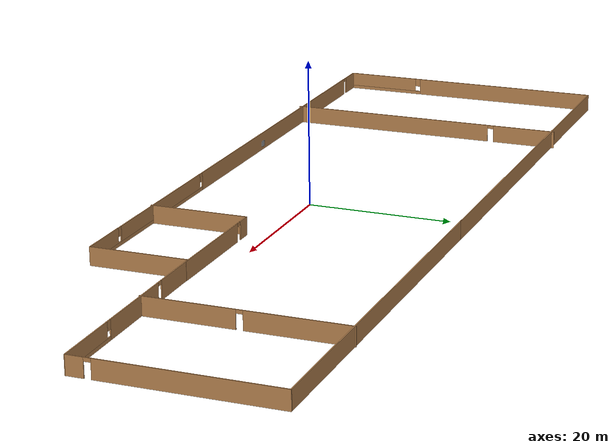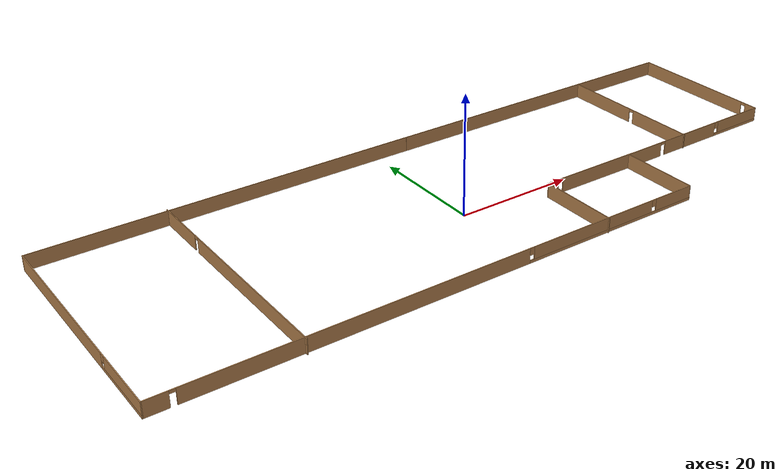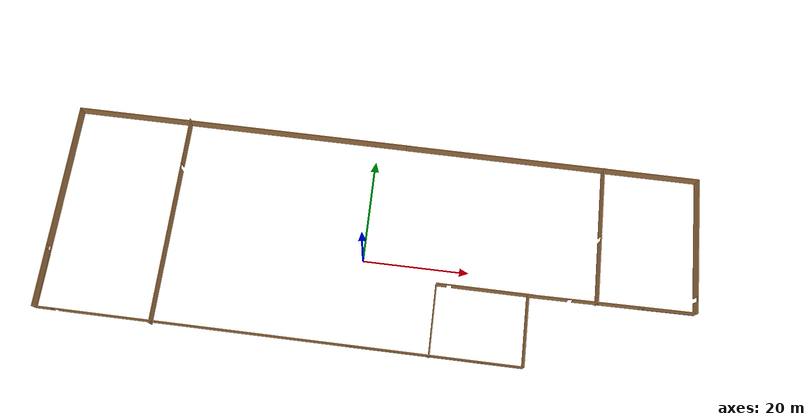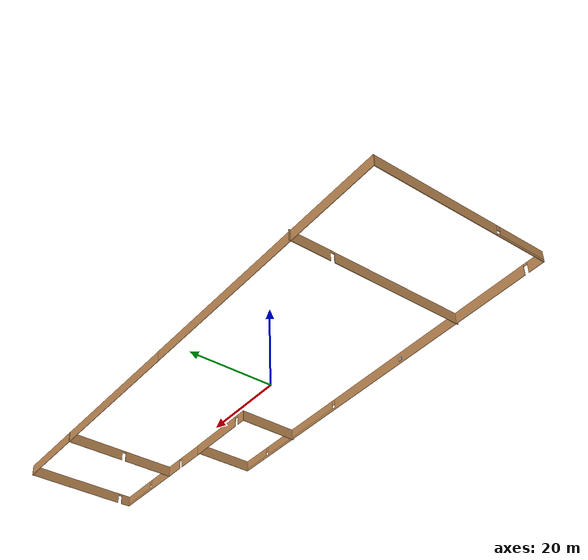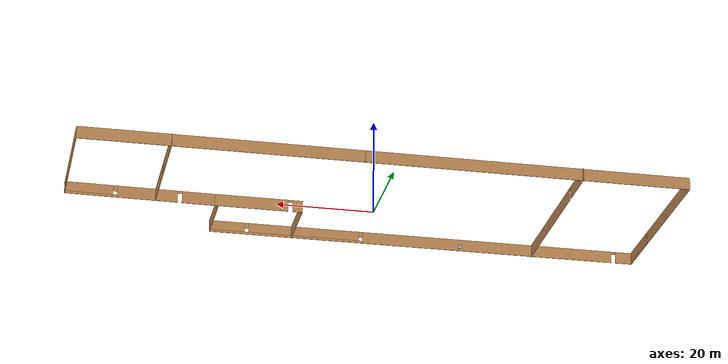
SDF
<?xml version='1.0'?>
<sdf version='1.6'>
  <model name='newworld'>
    <pose frame=''>1.44119 3.47253 0 0 -0 0</pose>
    <link name='Wall_1'>
      <collision name='Wall_1_Collision'>
        <geometry>
          <box>
            <size>65.75 0.15 2.5</size>
          </box>
        </geometry>
        <pose frame=''>0 0 1.25 0 -0 0</pose>
      </collision>
      <visual name='Wall_1_Visual'>
        <pose frame=''>0 0 1.25 0 -0 0</pose>
        <geometry>
          <box>
            <size>65.75 0.15 2.5</size>
          </box>
        </geometry>
        <material>
          <script>
            <uri>file://media/materials/scripts/gazebo.material</uri>
            <name>Gazebo/Wood</name>
          </script>
          <ambient>1 1 1 1</ambient>
        </material>
        <meta>
          <layer>0</layer>
        </meta>
      </visual>
      <pose frame=''>-27.9742 19.9319 0 0 -0 3.14159</pose>
    </link>
    <link name='Wall_10'>
      <collision name='Wall_10_Collision'>
        <geometry>
          <box>
            <size>56.75 0.15 2.5</size>
          </box>
        </geometry>
        <pose frame=''>0 0 1.25 0 -0 0</pose>
      </collision>
      <visual name='Wall_10_Visual'>
        <pose frame=''>0 0 1.25 0 -0 0</pose>
        <geometry>
          <box>
            <size>56.75 0.15 2.5</size>
          </box>
        </geometry>
        <material>
          <script>
            <uri>file://media/materials/scripts/gazebo.material</uri>
            <name>Gazebo/Wood</name>
          </script>
          <ambient>1 1 1 1</ambient>
        </material>
        <meta>
          <layer>0</layer>
        </meta>
      </visual>
      <pose frame=''>32.4733 19.9086 0 0 -0 0</pose>
    </link>
    <link name='Wall_11'>
      <pose frame=''>60.7733 6.85863 0 0 0 -1.5708</pose>
      <visual name='Wall_11_Visual_0'>
        <pose frame=''>-1.6007 0 1.25 0 -0 0</pose>
        <geometry>
          <box>
            <size>23.0486 0.15 2.5</size>
          </box>
        </geometry>
        <material>
          <script>
            <uri>file://media/materials/scripts/gazebo.material</uri>
            <name>Gazebo/Wood</name>
          </script>
          <ambient>1 1 1 1</ambient>
        </material>
        <meta>
          <layer>0</layer>
        </meta>
      </visual>
      <collision name='Wall_11_Collision_0'>
        <geometry>
          <box>
            <size>23.0486 0.15 2.5</size>
          </box>
        </geometry>
        <pose frame=''>-1.6007 0 1.25 0 -0 0</pose>
      </collision>
      <visual name='Wall_11_Visual_1'>
        <pose frame=''>11.9743 0 1.25 0 -0 0</pose>
        <geometry>
          <box>
            <size>2.30139 0.15 2.5</size>
          </box>
        </geometry>
        <material>
          <script>
            <uri>file://media/materials/scripts/gazebo.material</uri>
            <name>Gazebo/Wood</name>
          </script>
          <ambient>1 1 1 1</ambient>
        </material>
        <meta>
          <layer>0</layer>
        </meta>
      </visual>
      <collision name='Wall_11_Collision_1'>
        <geometry>
          <box>
            <size>2.30139 0.15 2.5</size>
          </box>
        </geometry>
        <pose frame=''>11.9743 0 1.25 0 -0 0</pose>
      </collision>
      <visual name='Wall_11_Visual_2'>
        <pose frame=''>10.3736 0 2.25 0 -0 0</pose>
        <geometry>
          <box>
            <size>0.9 0.15 0.5</size>
          </box>
        </geometry>
        <material>
          <script>
            <uri>file://media/materials/scripts/gazebo.material</uri>
            <name>Gazebo/Wood</name>
          </script>
          <ambient>1 1 1 1</ambient>
        </material>
        <meta>
          <layer>0</layer>
        </meta>
      </visual>
      <collision name='Wall_11_Collision_2'>
        <geometry>
          <box>
            <size>0.9 0.15 0.5</size>
          </box>
        </geometry>
        <pose frame=''>10.3736 0 2.25 0 -0 0</pose>
      </collision>
    </link>
    <link name='Wall_13'>
      <pose frame=''>45.2995 -6.37974 0 0 -0 0.012173</pose>
      <visual name='Wall_13_Visual_0'>
        <pose frame=''>-11.7999 0 1.25 0 -0 0</pose>
        <geometry>
          <box>
            <size>7.49983 0.15 2.5</size>
          </box>
        </geometry>
        <material>
          <script>
            <uri>file://media/materials/scripts/gazebo.material</uri>
            <name>Gazebo/Wood</name>
          </script>
          <ambient>1 1 1 1</ambient>
        </material>
        <meta>
          <layer>0</layer>
        </meta>
      </visual>
      <collision name='Wall_13_Collision_0'>
        <geometry>
          <box>
            <size>7.49983 0.15 2.5</size>
          </box>
        </geometry>
        <pose frame=''>-11.7999 0 1.25 0 -0 0</pose>
      </collision>
      <visual name='Wall_13_Visual_1'>
        <pose frame=''>-1.06438 0 1.25 0 -0 0</pose>
        <geometry>
          <box>
            <size>12.1713 0.15 2.5</size>
          </box>
        </geometry>
        <material>
          <script>
            <uri>file://media/materials/scripts/gazebo.material</uri>
            <name>Gazebo/Wood</name>
          </script>
          <ambient>1 1 1 1</ambient>
        </material>
        <meta>
          <layer>0</layer>
        </meta>
      </visual>
      <collision name='Wall_13_Collision_1'>
        <geometry>
          <box>
            <size>12.1713 0.15 2.5</size>
          </box>
        </geometry>
        <pose frame=''>-1.06438 0 1.25 0 -0 0</pose>
      </collision>
      <visual name='Wall_13_Visual_2'>
        <pose frame=''>10.2856 0 0.25 0 -0 0</pose>
        <geometry>
          <box>
            <size>10.5286 0.15 0.5</size>
          </box>
        </geometry>
        <material>
          <script>
            <uri>file://media/materials/scripts/gazebo.material</uri>
            <name>Gazebo/Wood</name>
          </script>
          <ambient>1 1 1 1</ambient>
        </material>
        <meta>
          <layer>0</layer>
        </meta>
      </visual>
      <collision name='Wall_13_Collision_2'>
        <geometry>
          <box>
            <size>10.5286 0.15 0.5</size>
          </box>
        </geometry>
        <pose frame=''>10.2856 0 0.25 0 -0 0</pose>
      </collision>
      <visual name='Wall_13_Visual_3'>
        <pose frame=''>10.6856 0 1.5 0 -0 0</pose>
        <geometry>
          <box>
            <size>9.72858 0.15 2</size>
          </box>
        </geometry>
        <material>
          <script>
            <uri>file://media/materials/scripts/gazebo.material</uri>
            <name>Gazebo/Wood</name>
          </script>
          <ambient>1 1 1 1</ambient>
        </material>
        <meta>
          <layer>0</layer>
        </meta>
      </visual>
      <collision name='Wall_13_Collision_3'>
        <geometry>
          <box>
            <size>9.72858 0.15 2</size>
          </box>
        </geometry>
        <pose frame=''>10.6856 0 1.5 0 -0 0</pose>
      </collision>
      <visual name='Wall_13_Visual_4'>
        <pose frame=''>5.42127 0 1.9 0 -0 0</pose>
        <geometry>
          <box>
            <size>0.8 0.15 1.2</size>
          </box>
        </geometry>
        <material>
          <script>
            <uri>file://media/materials/scripts/gazebo.material</uri>
            <name>Gazebo/Wood</name>
          </script>
          <ambient>1 1 1 1</ambient>
        </material>
        <meta>
          <layer>0</layer>
        </meta>
      </visual>
      <collision name='Wall_13_Collision_4'>
        <geometry>
          <box>
            <size>0.8 0.15 1.2</size>
          </box>
        </geometry>
        <pose frame=''>5.42127 0 1.9 0 -0 0</pose>
      </collision>
      <visual name='Wall_13_Visual_5'>
        <pose frame=''>-7.60002 0 2.25 0 -0 0</pose>
        <geometry>
          <box>
            <size>0.9 0.15 0.5</size>
          </box>
        </geometry>
        <material>
          <script>
            <uri>file://media/materials/scripts/gazebo.material</uri>
            <name>Gazebo/Wood</name>
          </script>
          <ambient>1 1 1 1</ambient>
        </material>
        <meta>
          <layer>0</layer>
        </meta>
      </visual>
      <collision name='Wall_13_Collision_5'>
        <geometry>
          <box>
            <size>0.9 0.15 0.5</size>
          </box>
        </geometry>
        <pose frame=''>-7.60002 0 2.25 0 -0 0</pose>
      </collision>
    </link>
    <link name='Wall_15'>
      <pose frame=''>21.617 -6.513 0 0 -0 3.14159</pose>
      <visual name='Wall_15_Visual_0'>
        <pose frame=''>-1.49387 0 1.25 0 -0 0</pose>
        <geometry>
          <box>
            <size>15.0123 0.15 2.5</size>
          </box>
        </geometry>
        <material>
          <script>
            <uri>file://media/materials/scripts/gazebo.material</uri>
            <name>Gazebo/Wood</name>
          </script>
          <ambient>1 1 1 1</ambient>
        </material>
        <meta>
          <layer>0</layer>
        </meta>
      </visual>
      <collision name='Wall_15_Collision_0'>
        <geometry>
          <box>
            <size>15.0123 0.15 2.5</size>
          </box>
        </geometry>
        <pose frame=''>-1.49387 0 1.25 0 -0 0</pose>
      </collision>
      <visual name='Wall_15_Visual_1'>
        <pose frame=''>7.95613 0 1.25 0 -0 0</pose>
        <geometry>
          <box>
            <size>2.08774 0.15 2.5</size>
          </box>
        </geometry>
        <material>
          <script>
            <uri>file://media/materials/scripts/gazebo.material</uri>
            <name>Gazebo/Wood</name>
          </script>
          <ambient>1 1 1 1</ambient>
        </material>
        <meta>
          <layer>0</layer>
        </meta>
      </visual>
      <collision name='Wall_15_Collision_1'>
        <geometry>
          <box>
            <size>2.08774 0.15 2.5</size>
          </box>
        </geometry>
        <pose frame=''>7.95613 0 1.25 0 -0 0</pose>
      </collision>
      <visual name='Wall_15_Visual_2'>
        <pose frame=''>6.46226 0 2.25 0 -0 0</pose>
        <geometry>
          <box>
            <size>0.9 0.15 0.5</size>
          </box>
        </geometry>
        <material>
          <script>
            <uri>file://media/materials/scripts/gazebo.material</uri>
            <name>Gazebo/Wood</name>
          </script>
          <ambient>1 1 1 1</ambient>
        </material>
        <meta>
          <layer>0</layer>
        </meta>
      </visual>
      <collision name='Wall_15_Collision_2'>
        <geometry>
          <box>
            <size>0.9 0.15 0.5</size>
          </box>
        </geometry>
        <pose frame=''>6.46226 0 2.25 0 -0 0</pose>
      </collision>
    </link>
    <link name='Wall_16'>
      <collision name='Wall_16_Collision'>
        <geometry>
          <box>
            <size>13.75 0.15 2.5</size>
          </box>
        </geometry>
        <pose frame=''>0 0 1.25 0 -0 0</pose>
      </collision>
      <visual name='Wall_16_Visual'>
        <pose frame=''>0 0 1.25 0 -0 0</pose>
        <geometry>
          <box>
            <size>13.75 0.15 2.5</size>
          </box>
        </geometry>
        <material>
          <script>
            <uri>file://media/materials/scripts/gazebo.material</uri>
            <name>Gazebo/Wood</name>
          </script>
          <ambient>1 1 1 1</ambient>
        </material>
        <meta>
          <layer>0</layer>
        </meta>
      </visual>
      <pose frame=''>12.692 -13.313 0 0 0 -1.5708</pose>
    </link>
    <link name='Wall_18'>
      <pose frame=''>-38.8313 0 0 0 0 -1.5708</pose>
      <visual name='Wall_18_Visual_0'>
        <pose frame=''>-15.6908 0 1.25 0 -0 0</pose>
        <geometry>
          <box>
            <size>9.36847 0.15 2.5</size>
          </box>
        </geometry>
        <material>
          <script>
            <uri>file://media/materials/scripts/gazebo.material</uri>
            <name>Gazebo/Wood</name>
          </script>
          <ambient>1 1 1 1</ambient>
        </material>
        <meta>
          <layer>0</layer>
        </meta>
      </visual>
      <collision name='Wall_18_Collision_0'>
        <geometry>
          <box>
            <size>9.36847 0.15 2.5</size>
          </box>
        </geometry>
        <pose frame=''>-15.6908 0 1.25 0 -0 0</pose>
      </collision>
      <visual name='Wall_18_Visual_1'>
        <pose frame=''>5.13424 0 1.25 0 -0 0</pose>
        <geometry>
          <box>
            <size>30.4815 0.15 2.5</size>
          </box>
        </geometry>
        <material>
          <script>
            <uri>file://media/materials/scripts/gazebo.material</uri>
            <name>Gazebo/Wood</name>
          </script>
          <ambient>1 1 1 1</ambient>
        </material>
        <meta>
          <layer>0</layer>
        </meta>
      </visual>
      <collision name='Wall_18_Collision_1'>
        <geometry>
          <box>
            <size>30.4815 0.15 2.5</size>
          </box>
        </geometry>
        <pose frame=''>5.13424 0 1.25 0 -0 0</pose>
      </collision>
      <visual name='Wall_18_Visual_2'>
        <pose frame=''>-10.5565 0 2.25 0 -0 0</pose>
        <geometry>
          <box>
            <size>0.9 0.15 0.5</size>
          </box>
        </geometry>
        <material>
          <script>
            <uri>file://media/materials/scripts/gazebo.material</uri>
            <name>Gazebo/Wood</name>
          </script>
          <ambient>1 1 1 1</ambient>
        </material>
        <meta>
          <layer>0</layer>
        </meta>
      </visual>
      <collision name='Wall_18_Collision_2'>
        <geometry>
          <box>
            <size>0.9 0.15 0.5</size>
          </box>
        </geometry>
        <pose frame=''>-10.5565 0 2.25 0 -0 0</pose>
      </collision>
    </link>
    <link name='Wall_2'>
      <pose frame=''>-60.7742 0.006892 0 0 0 -1.5708</pose>
      <visual name='Wall_2_Visual_0'>
        <pose frame=''>-5.91174 0 1.25 0 -0 0</pose>
        <geometry>
          <box>
            <size>28.1765 0.15 2.5</size>
          </box>
        </geometry>
        <material>
          <script>
            <uri>file://media/materials/scripts/gazebo.material</uri>
            <name>Gazebo/Wood</name>
          </script>
          <ambient>1 1 1 1</ambient>
        </material>
        <meta>
          <layer>0</layer>
        </meta>
      </visual>
      <collision name='Wall_2_Collision_0'>
        <geometry>
          <box>
            <size>28.1765 0.15 2.5</size>
          </box>
        </geometry>
        <pose frame=''>-5.91174 0 1.25 0 -0 0</pose>
      </collision>
      <visual name='Wall_2_Visual_1'>
        <pose frame=''>14.0883 0 0.25 0 -0 0</pose>
        <geometry>
          <box>
            <size>11.8235 0.15 0.5</size>
          </box>
        </geometry>
        <material>
          <script>
            <uri>file://media/materials/scripts/gazebo.material</uri>
            <name>Gazebo/Wood</name>
          </script>
          <ambient>1 1 1 1</ambient>
        </material>
        <meta>
          <layer>0</layer>
        </meta>
      </visual>
      <collision name='Wall_2_Collision_1'>
        <geometry>
          <box>
            <size>11.8235 0.15 0.5</size>
          </box>
        </geometry>
        <pose frame=''>14.0883 0 0.25 0 -0 0</pose>
      </collision>
      <visual name='Wall_2_Visual_2'>
        <pose frame=''>14.4883 0 1.5 0 -0 0</pose>
        <geometry>
          <box>
            <size>11.0235 0.15 2</size>
          </box>
        </geometry>
        <material>
          <script>
            <uri>file://media/materials/scripts/gazebo.material</uri>
            <name>Gazebo/Wood</name>
          </script>
          <ambient>1 1 1 1</ambient>
        </material>
        <meta>
          <layer>0</layer>
        </meta>
      </visual>
      <collision name='Wall_2_Collision_2'>
        <geometry>
          <box>
            <size>11.0235 0.15 2</size>
          </box>
        </geometry>
        <pose frame=''>14.4883 0 1.5 0 -0 0</pose>
      </collision>
      <visual name='Wall_2_Visual_3'>
        <pose frame=''>8.57652 0 1.9 0 -0 0</pose>
        <geometry>
          <box>
            <size>0.8 0.15 1.2</size>
          </box>
        </geometry>
        <material>
          <script>
            <uri>file://media/materials/scripts/gazebo.material</uri>
            <name>Gazebo/Wood</name>
          </script>
          <ambient>1 1 1 1</ambient>
        </material>
        <meta>
          <layer>0</layer>
        </meta>
      </visual>
      <collision name='Wall_2_Collision_3'>
        <geometry>
          <box>
            <size>0.8 0.15 1.2</size>
          </box>
        </geometry>
        <pose frame=''>8.57652 0 1.9 0 -0 0</pose>
      </collision>
    </link>
    <link name='Wall_20'>
      <pose frame=''>42.5945 6.72053 0 0 0 -1.5708</pose>
      <visual name='Wall_20_Visual_0'>
        <pose frame=''>-6.54005 0 1.25 0 -0 0</pose>
        <geometry>
          <box>
            <size>13.6699 0.15 2.5</size>
          </box>
        </geometry>
        <material>
          <script>
            <uri>file://media/materials/scripts/gazebo.material</uri>
            <name>Gazebo/Wood</name>
          </script>
          <ambient>1 1 1 1</ambient>
        </material>
        <meta>
          <layer>0</layer>
        </meta>
      </visual>
      <collision name='Wall_20_Collision_0'>
        <geometry>
          <box>
            <size>13.6699 0.15 2.5</size>
          </box>
        </geometry>
        <pose frame=''>-6.54005 0 1.25 0 -0 0</pose>
      </collision>
      <visual name='Wall_20_Visual_1'>
        <pose frame=''>7.28495 0 1.25 0 -0 0</pose>
        <geometry>
          <box>
            <size>12.1801 0.15 2.5</size>
          </box>
        </geometry>
        <material>
          <script>
            <uri>file://media/materials/scripts/gazebo.material</uri>
            <name>Gazebo/Wood</name>
          </script>
          <ambient>1 1 1 1</ambient>
        </material>
        <meta>
          <layer>0</layer>
        </meta>
      </visual>
      <collision name='Wall_20_Collision_1'>
        <geometry>
          <box>
            <size>12.1801 0.15 2.5</size>
          </box>
        </geometry>
        <pose frame=''>7.28495 0 1.25 0 -0 0</pose>
      </collision>
      <visual name='Wall_20_Visual_2'>
        <pose frame=''>0.744905 0 2.25 0 -0 0</pose>
        <geometry>
          <box>
            <size>0.9 0.15 0.5</size>
          </box>
        </geometry>
        <material>
          <script>
            <uri>file://media/materials/scripts/gazebo.material</uri>
            <name>Gazebo/Wood</name>
          </script>
          <ambient>1 1 1 1</ambient>
        </material>
        <meta>
          <layer>0</layer>
        </meta>
      </visual>
      <collision name='Wall_20_Collision_2'>
        <geometry>
          <box>
            <size>0.9 0.15 0.5</size>
          </box>
        </geometry>
        <pose frame=''>0.744905 0 2.25 0 -0 0</pose>
      </collision>
    </link>
    <link name='Wall_3'>
      <pose frame=''>-15.4742 -19.9181 0 0 -0 0</pose>
      <visual name='Wall_3_Visual_0'>
        <pose frame=''>-43.5721 0 1.25 0 -0 0</pose>
        <geometry>
          <box>
            <size>3.60573 0.15 2.5</size>
          </box>
        </geometry>
        <material>
          <script>
            <uri>file://media/materials/scripts/gazebo.material</uri>
            <name>Gazebo/Wood</name>
          </script>
          <ambient>1 1 1 1</ambient>
        </material>
        <meta>
          <layer>0</layer>
        </meta>
      </visual>
      <collision name='Wall_3_Collision_0'>
        <geometry>
          <box>
            <size>3.60573 0.15 2.5</size>
          </box>
        </geometry>
        <pose frame=''>-43.5721 0 1.25 0 -0 0</pose>
      </collision>
      <visual name='Wall_3_Visual_1'>
        <pose frame=''>-13.8552 0 1.25 0 -0 0</pose>
        <geometry>
          <box>
            <size>54.0281 0.15 2.5</size>
          </box>
        </geometry>
        <material>
          <script>
            <uri>file://media/materials/scripts/gazebo.material</uri>
            <name>Gazebo/Wood</name>
          </script>
          <ambient>1 1 1 1</ambient>
        </material>
        <meta>
          <layer>0</layer>
        </meta>
      </visual>
      <collision name='Wall_3_Collision_1'>
        <geometry>
          <box>
            <size>54.0281 0.15 2.5</size>
          </box>
        </geometry>
        <pose frame=''>-13.8552 0 1.25 0 -0 0</pose>
      </collision>
      <visual name='Wall_3_Visual_2'>
        <pose frame=''>29.2669 0 0.25 0 -0 0</pose>
        <geometry>
          <box>
            <size>32.2161 0.15 0.5</size>
          </box>
        </geometry>
        <material>
          <script>
            <uri>file://media/materials/scripts/gazebo.material</uri>
            <name>Gazebo/Wood</name>
          </script>
          <ambient>1 1 1 1</ambient>
        </material>
        <meta>
          <layer>0</layer>
        </meta>
      </visual>
      <collision name='Wall_3_Collision_2'>
        <geometry>
          <box>
            <size>32.2161 0.15 0.5</size>
          </box>
        </geometry>
        <pose frame=''>29.2669 0 0.25 0 -0 0</pose>
      </collision>
      <visual name='Wall_3_Visual_3'>
        <pose frame=''>25.5649 0 1.5 0 -0 0</pose>
        <geometry>
          <box>
            <size>23.212 0.15 2</size>
          </box>
        </geometry>
        <material>
          <script>
            <uri>file://media/materials/scripts/gazebo.material</uri>
            <name>Gazebo/Wood</name>
          </script>
          <ambient>1 1 1 1</ambient>
        </material>
        <meta>
          <layer>0</layer>
        </meta>
      </visual>
      <collision name='Wall_3_Collision_3'>
        <geometry>
          <box>
            <size>23.212 0.15 2</size>
          </box>
        </geometry>
        <pose frame=''>25.5649 0 1.5 0 -0 0</pose>
      </collision>
      <visual name='Wall_3_Visual_4'>
        <pose frame=''>41.6729 0 1.5 0 -0 0</pose>
        <geometry>
          <box>
            <size>7.40412 0.15 2</size>
          </box>
        </geometry>
        <material>
          <script>
            <uri>file://media/materials/scripts/gazebo.material</uri>
            <name>Gazebo/Wood</name>
          </script>
          <ambient>1 1 1 1</ambient>
        </material>
        <meta>
          <layer>0</layer>
        </meta>
      </visual>
      <collision name='Wall_3_Collision_4'>
        <geometry>
          <box>
            <size>7.40412 0.15 2</size>
          </box>
        </geometry>
        <pose frame=''>41.6729 0 1.5 0 -0 0</pose>
      </collision>
      <visual name='Wall_3_Visual_5'>
        <pose frame=''>13.5589 0 1.9 0 -0 0</pose>
        <geometry>
          <box>
            <size>0.8 0.15 1.2</size>
          </box>
        </geometry>
        <material>
          <script>
            <uri>file://media/materials/scripts/gazebo.material</uri>
            <name>Gazebo/Wood</name>
          </script>
          <ambient>1 1 1 1</ambient>
        </material>
        <meta>
          <layer>0</layer>
        </meta>
      </visual>
      <collision name='Wall_3_Collision_5'>
        <geometry>
          <box>
            <size>0.8 0.15 1.2</size>
          </box>
        </geometry>
        <pose frame=''>13.5589 0 1.9 0 -0 0</pose>
      </collision>
      <visual name='Wall_3_Visual_6'>
        <pose frame=''>37.5709 0 1.9 0 -0 0</pose>
        <geometry>
          <box>
            <size>0.8 0.15 1.2</size>
          </box>
        </geometry>
        <material>
          <script>
            <uri>file://media/materials/scripts/gazebo.material</uri>
            <name>Gazebo/Wood</name>
          </script>
          <ambient>1 1 1 1</ambient>
        </material>
        <meta>
          <layer>0</layer>
        </meta>
      </visual>
      <collision name='Wall_3_Collision_6'>
        <geometry>
          <box>
            <size>0.8 0.15 1.2</size>
          </box>
        </geometry>
        <pose frame=''>37.5709 0 1.9 0 -0 0</pose>
      </collision>
      <visual name='Wall_3_Visual_7'>
        <pose frame=''>-41.3193 0 2.25 0 -0 0</pose>
        <geometry>
          <box>
            <size>0.9 0.15 0.5</size>
          </box>
        </geometry>
        <material>
          <script>
            <uri>file://media/materials/scripts/gazebo.material</uri>
            <name>Gazebo/Wood</name>
          </script>
          <ambient>1 1 1 1</ambient>
        </material>
        <meta>
          <layer>0</layer>
        </meta>
      </visual>
      <collision name='Wall_3_Collision_7'>
        <geometry>
          <box>
            <size>0.9 0.15 0.5</size>
          </box>
        </geometry>
        <pose frame=''>-41.3193 0 2.25 0 -0 0</pose>
      </collision>
    </link>
    <link name='Wall_4'>
      <collision name='Wall_4_Collision'>
        <geometry>
          <box>
            <size>13.5 0.15 2.5</size>
          </box>
        </geometry>
        <pose frame=''>0 0 1.25 0 -0 0</pose>
      </collision>
      <visual name='Wall_4_Visual'>
        <pose frame=''>0 0 1.25 0 -0 0</pose>
        <geometry>
          <box>
            <size>13.5 0.15 2.5</size>
          </box>
        </geometry>
        <material>
          <script>
            <uri>file://media/materials/scripts/gazebo.material</uri>
            <name>Gazebo/Wood</name>
          </script>
          <ambient>1 1 1 1</ambient>
        </material>
        <meta>
          <layer>0</layer>
        </meta>
      </visual>
      <pose frame=''>29.8258 -13.2431 0 0 -0 1.5708</pose>
    </link>
    <link name='Window_2'>
      <collision name='Window_2_Collision'>
        <geometry>
          <box>
            <size>0.8 0.17 0.8</size>
          </box>
        </geometry>
        <pose frame=''>0 0 0.4 0 -0 0</pose>
      </collision>
      <visual name='Window_2_Visual'>
        <pose frame=''>0 0 0.4 0 -0 0</pose>
        <geometry>
          <box>
            <size>0.8 0.17 0.8</size>
          </box>
        </geometry>
        <material>
          <script>
            <uri>file://media/materials/scripts/gazebo.material</uri>
            <name>Gazebo/Grey</name>
          </script>
        </material>
      </visual>
      <pose frame=''>-23.1609 -19.7915 0.5 0 -0 0</pose>
    </link>
    <static>1</static>
  </model>
</sdf>
